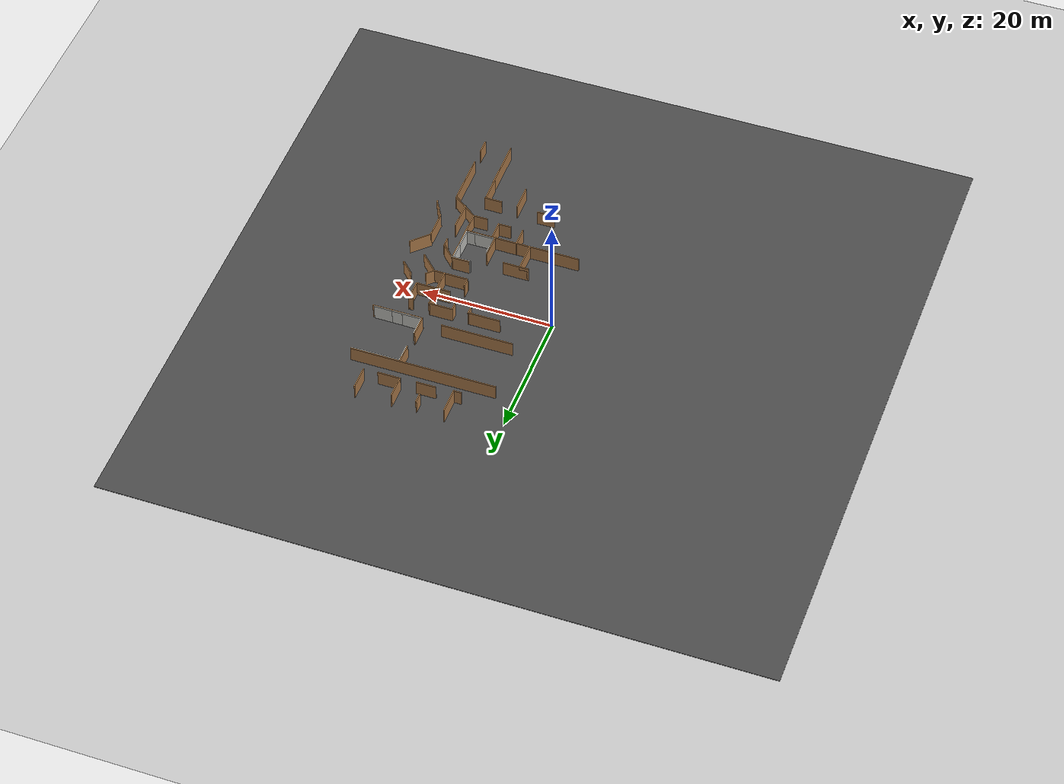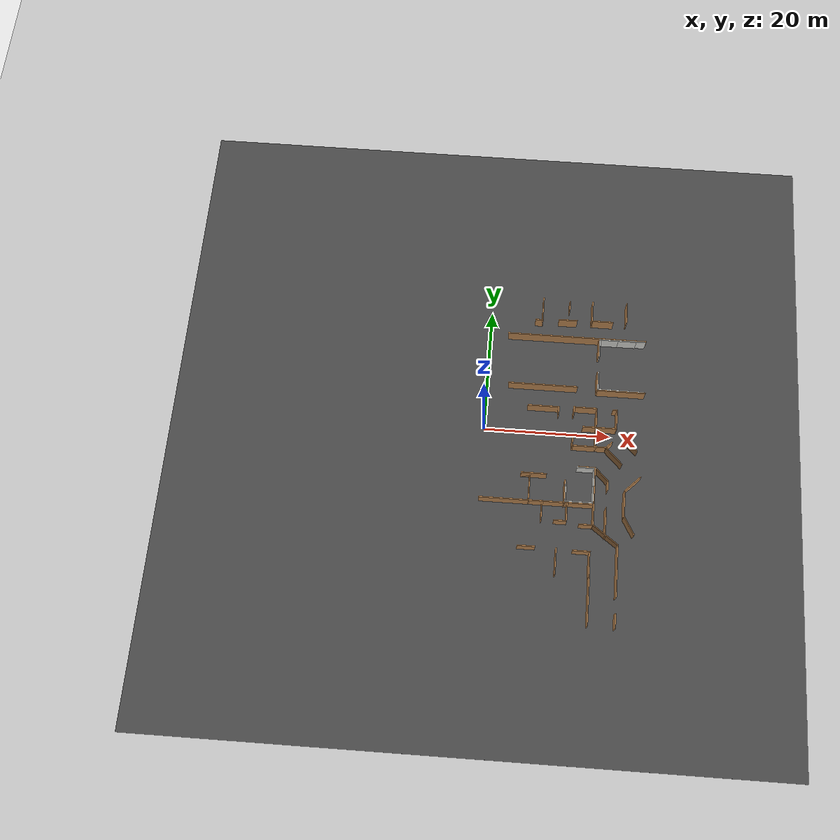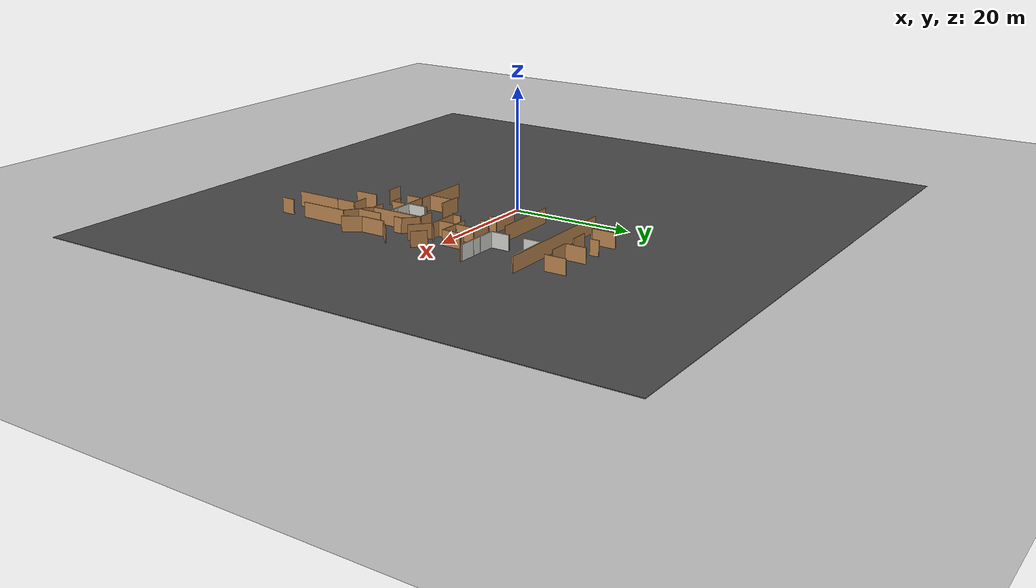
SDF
<sdf version="1.6">
 <world name="default">
  <model name="ground_plane">
   <static>1</static>
   <link name="link">
    <collision name="collision">
     <geometry><plane><normal>0 0 1</normal><size>100 100</size></plane></geometry>
     <surface><friction><ode><mu>100</mu><mu2>50</mu2></ode></friction></surface>
    </collision>
    <visual name="visual">
     <cast_shadows>0</cast_shadows>
     <geometry><plane><normal>0 0 1</normal><size>100 100</size></plane></geometry>
     <material>
      <script><uri>file://media/materials/scripts/gazebo.material</uri><name>Gazebo/Grey</name></script>
     </material>
    </visual>
   </link>
  </model>
  <model name="asphalt_plane">
   <static>1</static>
   <link name="link">
    <collision name="collision"><geometry><box><size>100 100 0.1</size></box></geometry></collision>
    <visual name="visual">
     <cast_shadows>0</cast_shadows>
     <geometry><box><size>100 100 0.1</size></box></geometry>
     <material>
      <script>
       <uri>model://asphalt_plane/materials/scripts</uri>
       <uri>model://asphalt_plane/materials/textures</uri>
       <name>vrc/asphalt</name>
      </script>
     </material>
    </visual>
   </link>
  </model>
  <model name="Hard_wall_wall_6_clone_1">
   <pose>16.3445 -5.99981 0 0 -0 1.57079</pose>
   <link name="Wall_0">
    <collision name="Wall_0_Collision">
     <geometry><box><size>3 0.15 2.5</size></box></geometry>
     <pose>0 0 1.25 0 -0 0</pose>
    </collision>
    <visual name="Wall_0_Visual">
     <pose>0 0 1.25 0 -0 0</pose>
     <geometry><box><size>3 0.15 2.5</size></box></geometry>
     <material>
      <script><uri>file://media/materials/scripts/gazebo.material</uri><name>Gazebo/CeilingTiled</name></script>
      <ambient>1 1 1 1</ambient>
     </material>
     <meta><layer>0</layer></meta>
    </visual>
    <pose>0 0 0 0 -0 1.5708</pose>
   </link>
   <static>1</static>
  </model>
  <model name="Hard_wall_wall_6_clone_2">
   <pose>15.9495 -11.5377 0 0 -0 1.57079</pose>
   <link name="Wall_0">
    <collision name="Wall_0_Collision">
     <geometry><box><size>3 0.15 2.5</size></box></geometry>
     <pose>0 0 1.25 0 -0 0</pose>
    </collision>
    <visual name="Wall_0_Visual">
     <pose>0 0 1.25 0 -0 0</pose>
     <geometry><box><size>3 0.15 2.5</size></box></geometry>
     <material>
      <script><uri>file://media/materials/scripts/gazebo.material</uri><name>Gazebo/CeilingTiled</name></script>
      <ambient>1 1 1 1</ambient>
     </material>
     <meta><layer>0</layer></meta>
    </visual>
    <pose>0 0 0 0 -0 1.5708</pose>
   </link>
   <static>1</static>
  </model>
  <model name="Hard_wall_wall_6_clone_3">
   <pose>14.6748 -11.5357 0 0 -0 1.57079</pose>
   <link name="Wall_0">
    <collision name="Wall_0_Collision">
     <geometry><box><size>3 0.15 2.5</size></box></geometry>
     <pose>0 0 1.25 0 -0 0</pose>
    </collision>
    <visual name="Wall_0_Visual">
     <pose>0 0 1.25 0 -0 0</pose>
     <geometry><box><size>3 0.15 2.5</size></box></geometry>
     <material>
      <script><uri>file://media/materials/scripts/gazebo.material</uri><name>Gazebo/CeilingTiled</name></script>
      <ambient>1 1 1 1</ambient>
     </material>
     <meta><layer>0</layer></meta>
    </visual>
    <pose>0 0 0 0 -0 1.5708</pose>
   </link>
   <static>1</static>
  </model>
  <model name="Hard_wall_wall_7">
   <pose>13.2693 -9.97942 0 0 -0 0</pose>
   <link name="Wall_0">
    <collision name="Wall_0_Collision">
     <geometry><box><size>3 0.15 2.5</size></box></geometry>
     <pose>0 0 1.25 0 -0 0</pose>
    </collision>
    <visual name="Wall_0_Visual">
     <pose>0 0 1.25 0 -0 0</pose>
     <geometry><box><size>3 0.15 2.5</size></box></geometry>
     <material>
      <script><uri>file://media/materials/scripts/gazebo.material</uri><name>Gazebo/CeilingTiled</name></script>
      <ambient>1 1 1 1</ambient>
     </material>
     <meta><layer>0</layer></meta>
    </visual>
    <pose>0 0 0 0 -0 1.5708</pose>
   </link>
   <static>1</static>
  </model>
  <model name="Hard_wall_wall_8">
   <pose>17.5032 -10.1408 0 0 -0 0</pose>
   <link name="Wall_0">
    <collision name="Wall_0_Collision">
     <geometry><box><size>3 0.15 2.5</size></box></geometry>
     <pose>0 0 1.25 0 -0 0</pose>
    </collision>
    <visual name="Wall_0_Visual">
     <pose>0 0 1.25 0 -0 0</pose>
     <geometry><box><size>3 0.15 2.5</size></box></geometry>
     <material>
      <script><uri>file://media/materials/scripts/gazebo.material</uri><name>Gazebo/CeilingTiled</name></script>
      <ambient>1 1 1 1</ambient>
     </material>
     <meta><layer>0</layer></meta>
    </visual>
    <pose>0 0 0 0 -0 1.5708</pose>
   </link>
   <static>1</static>
  </model>
  <model name="Hard_wall_wall_9">
   <pose>17.5144 -7.46989 0 0 -0 0</pose>
   <link name="Wall_0">
    <collision name="Wall_0_Collision">
     <geometry><box><size>3 0.15 2.5</size></box></geometry>
     <pose>0 0 1.25 0 -0 0</pose>
    </collision>
    <visual name="Wall_0_Visual">
     <pose>0 0 1.25 0 -0 0</pose>
     <geometry><box><size>3 0.15 2.5</size></box></geometry>
     <material>
      <script><uri>file://media/materials/scripts/gazebo.material</uri><name>Gazebo/CeilingTiled</name></script>
      <ambient>1 1 1 1</ambient>
     </material>
     <meta><layer>0</layer></meta>
    </visual>
    <pose>0 0 0 0 -0 1.5708</pose>
   </link>
   <static>1</static>
  </model>
  <model name="Hard_wall_wall_6_clone_15">
   <pose>19.0082 7.09385 0 0 -0 1.57079</pose>
   <link name="Wall_0">
    <collision name="Wall_0_Collision">
     <geometry><box><size>3 0.15 2.5</size></box></geometry>
     <pose>0 0 1.25 0 -0 0</pose>
    </collision>
    <visual name="Wall_0_Visual">
     <pose>0 0 1.25 0 -0 0</pose>
     <geometry><box><size>3 0.15 2.5</size></box></geometry>
     <material>
      <script><uri>file://media/materials/scripts/gazebo.material</uri><name>Gazebo/CeilingTiled</name></script>
      <ambient>1 1 1 1</ambient>
     </material>
     <meta><layer>0</layer></meta>
    </visual>
    <pose>0 0 0 0 -0 1.5708</pose>
   </link>
   <static>1</static>
  </model>
  <model name="Hard_wall_wall_6_clone_16">
   <pose>20.5949 7.06095 0 0 -0 1.57079</pose>
   <link name="Wall_0">
    <collision name="Wall_0_Collision">
     <geometry><box><size>3 0.15 2.5</size></box></geometry>
     <pose>0 0 1.25 0 -0 0</pose>
    </collision>
    <visual name="Wall_0_Visual">
     <pose>0 0 1.25 0 -0 0</pose>
     <geometry><box><size>3 0.15 2.5</size></box></geometry>
     <material>
      <script><uri>file://media/materials/scripts/gazebo.material</uri><name>Gazebo/CeilingTiled</name></script>
      <ambient>1 1 1 1</ambient>
     </material>
     <meta><layer>0</layer></meta>
    </visual>
    <pose>0 0 0 0 -0 1.5708</pose>
   </link>
   <static>1</static>
  </model>
  <model name="Hard_wall_wall_6_clone_17">
   <pose>23.3706 7.05229 0 0 -0 1.57079</pose>
   <link name="Wall_0">
    <collision name="Wall_0_Collision">
     <geometry><box><size>3 0.15 2.5</size></box></geometry>
     <pose>0 0 1.25 0 -0 0</pose>
    </collision>
    <visual name="Wall_0_Visual">
     <pose>0 0 1.25 0 -0 0</pose>
     <geometry><box><size>3 0.15 2.5</size></box></geometry>
     <material>
      <script><uri>file://media/materials/scripts/gazebo.material</uri><name>Gazebo/CeilingTiled</name></script>
      <ambient>1 1 1 1</ambient>
     </material>
     <meta><layer>0</layer></meta>
    </visual>
    <pose>0 0 0 0 -0 1.5708</pose>
   </link>
   <static>1</static>
  </model>
  <model name="Hard_wall_wall_6_clone_18">
   <pose>23.5039 15.7147 0 0 -0 1.57079</pose>
   <link name="Wall_0">
    <collision name="Wall_0_Collision">
     <geometry><box><size>3 0.15 2.5</size></box></geometry>
     <pose>0 0 1.25 0 -0 0</pose>
    </collision>
    <visual name="Wall_0_Visual">
     <pose>0 0 1.25 0 -0 0</pose>
     <geometry><box><size>3 0.15 2.5</size></box></geometry>
     <material>
      <script><uri>file://media/materials/scripts/gazebo.material</uri><name>Gazebo/CeilingTiled</name></script>
      <ambient>1 1 1 1</ambient>
     </material>
     <meta><layer>0</layer></meta>
    </visual>
    <pose>0 0 0 0 -0 1.5708</pose>
   </link>
   <static>1</static>
  </model>
  <model name="Hard_wall_wall_6_clone_19">
   <pose>21.9639 15.6573 0 0 -0 1.57079</pose>
   <link name="Wall_0">
    <collision name="Wall_0_Collision">
     <geometry><box><size>3 0.15 2.5</size></box></geometry>
     <pose>0 0 1.25 0 -0 0</pose>
    </collision>
    <visual name="Wall_0_Visual">
     <pose>0 0 1.25 0 -0 0</pose>
     <geometry><box><size>3 0.15 2.5</size></box></geometry>
     <material>
      <script><uri>file://media/materials/scripts/gazebo.material</uri><name>Gazebo/CeilingTiled</name></script>
      <ambient>1 1 1 1</ambient>
     </material>
     <meta><layer>0</layer></meta>
    </visual>
    <pose>0 0 0 0 -0 1.5708</pose>
   </link>
   <static>1</static>
  </model>
  <model name="Hard_wall_wall_6_clone_20">
   <pose>19.0587 15.6479 0 0 -0 1.57079</pose>
   <link name="Wall_0">
    <collision name="Wall_0_Collision">
     <geometry><box><size>3 0.15 2.5</size></box></geometry>
     <pose>0 0 1.25 0 -0 0</pose>
    </collision>
    <visual name="Wall_0_Visual">
     <pose>0 0 1.25 0 -0 0</pose>
     <geometry><box><size>3 0.15 2.5</size></box></geometry>
     <material>
      <script><uri>file://media/materials/scripts/gazebo.material</uri><name>Gazebo/CeilingTiled</name></script>
      <ambient>1 1 1 1</ambient>
     </material>
     <meta><layer>0</layer></meta>
    </visual>
    <pose>0 0 0 0 -0 1.5708</pose>
   </link>
   <static>1</static>
  </model>
  <model name="Hard_wall_wall_16">
   <pose>17.5839 8.5954 0 0 -0 0</pose>
   <link name="Wall_0">
    <collision name="Wall_0_Collision">
     <geometry><box><size>3 0.15 2.5</size></box></geometry>
     <pose>0 0 1.25 0 -0 0</pose>
    </collision>
    <visual name="Wall_0_Visual">
     <pose>0 0 1.25 0 -0 0</pose>
     <geometry><box><size>3 0.15 2.5</size></box></geometry>
     <material>
      <script><uri>file://media/materials/scripts/gazebo.material</uri><name>Gazebo/CeilingTiled</name></script>
      <ambient>1 1 1 1</ambient>
     </material>
     <meta><layer>0</layer></meta>
    </visual>
    <pose>0 0 0 0 -0 1.5708</pose>
   </link>
   <static>1</static>
  </model>
  <model name="Hard_wall_wall_18">
   <pose>17.6374 14.261 0 0 -0 0</pose>
   <link name="Wall_0">
    <collision name="Wall_0_Collision">
     <geometry><box><size>3 0.15 2.5</size></box></geometry>
     <pose>0 0 1.25 0 -0 0</pose>
    </collision>
    <visual name="Wall_0_Visual">
     <pose>0 0 1.25 0 -0 0</pose>
     <geometry><box><size>3 0.15 2.5</size></box></geometry>
     <material>
      <script><uri>file://media/materials/scripts/gazebo.material</uri><name>Gazebo/CeilingTiled</name></script>
      <ambient>1 1 1 1</ambient>
     </material>
     <meta><layer>0</layer></meta>
    </visual>
    <pose>0 0 0 0 -0 1.5708</pose>
   </link>
   <static>1</static>
  </model>
  <model name="Soft_wall_v1_1">
   <pose>-14.3408 -3.86286 0 0 -0 0</pose>
   <link name="Wall_100">
    <collision name="Wall_100_Collision">
     <geometry><box><size>3.5 0.15 2.5</size></box></geometry>
     <pose>0 0 1.25 0 -0 0</pose>
    </collision>
    <visual name="Wall_100_Visual">
     <pose>0 0 1.25 0 -0 0</pose>
     <geometry><box><size>3.5 0.15 2.5</size></box></geometry>
     <material>
      <script><uri>file://media/materials/scripts/gazebo.material</uri><name>Gazebo/Wood</name></script>
      <ambient>1 1 1 1</ambient>
     </material>
     <meta><layer>0</layer></meta>
    </visual>
    <pose>32.2598 22.7229 0 0 -0 3.14159</pose>
   </link>
   <link name="Wall_101">
    <collision name="Wall_101_Collision">
     <geometry><box><size>3.5 0.15 2.5</size></box></geometry>
     <pose>0 0 1.25 0 -0 0</pose>
    </collision>
    <visual name="Wall_101_Visual">
     <pose>0 0 1.25 0 -0 0</pose>
     <geometry><box><size>3.5 0.15 2.5</size></box></geometry>
     <material>
      <script><uri>file://media/materials/scripts/gazebo.material</uri><name>Gazebo/Wood</name></script>
      <ambient>1 1 1 1</ambient>
     </material>
     <meta><layer>0</layer></meta>
    </visual>
    <pose>30.5848 24.3979 0 0 -0 1.5708</pose>
   </link>
   <link name="Wall_105">
    <collision name="Wall_105_Collision">
     <geometry><box><size>3 0.15 2.5</size></box></geometry>
     <pose>0 0 1.25 0 -0 0</pose>
    </collision>
    <visual name="Wall_105_Visual">
     <pose>0 0 1.25 0 -0 0</pose>
     <geometry><box><size>3 0.15 2.5</size></box></geometry>
     <material>
      <script><uri>file://media/materials/scripts/gazebo.material</uri><name>Gazebo/Wood</name></script>
      <ambient>1 1 1 1</ambient>
     </material>
     <meta><layer>0</layer></meta>
    </visual>
    <pose>26.6647 22.5998 0 0 -0 3.14159</pose>
   </link>
   <link name="Wall_107">
    <collision name="Wall_107_Collision">
     <geometry><box><size>1.5 0.15 2.5</size></box></geometry>
     <pose>0 0 1.25 0 -0 0</pose>
    </collision>
    <visual name="Wall_107_Visual">
     <pose>0 0 1.25 0 -0 0</pose>
     <geometry><box><size>1.5 0.15 2.5</size></box></geometry>
     <material>
      <script><uri>file://media/materials/scripts/gazebo.material</uri><name>Gazebo/Wood</name></script>
      <ambient>1 1 1 1</ambient>
     </material>
     <meta><layer>0</layer></meta>
    </visual>
    <pose>26.8591 25.3088 0 0 0 -1.5708</pose>
   </link>
   <link name="Wall_109">
    <collision name="Wall_109_Collision">
     <geometry><box><size>4 0.15 2.5</size></box></geometry>
     <pose>0 0 1.25 0 -0 0</pose>
    </collision>
    <visual name="Wall_109_Visual">
     <pose>0 0 1.25 0 -0 0</pose>
     <geometry><box><size>4 0.15 2.5</size></box></geometry>
     <material>
      <script><uri>file://media/materials/scripts/gazebo.material</uri><name>Gazebo/Wood</name></script>
      <ambient>1 1 1 1</ambient>
     </material>
     <meta><layer>0</layer></meta>
    </visual>
    <pose>22.5522 24.305 0 0 0 -1.5708</pose>
   </link>
   <link name="Wall_110">
    <collision name="Wall_110_Collision">
     <geometry><box><size>1.25 0.15 2.5</size></box></geometry>
     <pose>0 0 1.25 0 -0 0</pose>
    </collision>
    <visual name="Wall_110_Visual">
     <pose>0 0 1.25 0 -0 0</pose>
     <geometry><box><size>1.25 0.15 2.5</size></box></geometry>
     <material>
      <script><uri>file://media/materials/scripts/gazebo.material</uri><name>Gazebo/Wood</name></script>
      <ambient>1 1 1 1</ambient>
     </material>
     <meta><layer>0</layer></meta>
    </visual>
    <pose>22.0022 22.38 0 0 -0 3.14159</pose>
   </link>
   <link name="Wall_174">
    <collision name="Wall_174_Collision">
     <geometry><box><size>22.25 0.15 2.5</size></box></geometry>
     <pose>0 0 1.25 0 -0 0</pose>
    </collision>
    <visual name="Wall_174_Visual">
     <pose>0 0 1.25 0 -0 0</pose>
     <geometry><box><size>22.25 0.15 2.5</size></box></geometry>
     <material>
      <script><uri>file://media/materials/scripts/gazebo.material</uri><name>Gazebo/Wood</name></script>
      <ambient>1 1 1 1</ambient>
     </material>
     <meta><layer>0</layer></meta>
    </visual>
    <pose>28.2902 19.6947 0 0 -0 3.14159</pose>
   </link>
   <link name="Wall_178">
    <collision name="Wall_178_Collision">
     <geometry><box><size>3.25 0.15 2.5</size></box></geometry>
     <pose>0 0 1.25 0 -0 0</pose>
    </collision>
    <visual name="Wall_178_Visual">
     <pose>0 0 1.25 0 -0 0</pose>
     <geometry><box><size>3.25 0.15 2.5</size></box></geometry>
     <material>
      <script><uri>file://media/materials/scripts/gazebo.material</uri><name>Gazebo/Wood</name></script>
      <ambient>1 1 1 1</ambient>
     </material>
     <meta><layer>0</layer></meta>
    </visual>
    <pose>31.7855 12.3459 0 0 -0 1.5708</pose>
   </link>
   <link name="Wall_180">
    <collision name="Wall_180_Collision">
     <geometry><box><size>3 0.15 2.5</size></box></geometry>
     <pose>0 0 1.25 0 -0 0</pose>
    </collision>
    <visual name="Wall_180_Visual">
     <pose>0 0 1.25 0 -0 0</pose>
     <geometry><box><size>3 0.15 2.5</size></box></geometry>
     <material>
      <script><uri>file://media/materials/scripts/gazebo.material</uri><name>Gazebo/Wood</name></script>
      <ambient>1 1 1 1</ambient>
     </material>
     <meta><layer>0</layer></meta>
    </visual>
    <pose>31.8338 18.0851 0 0 0 -1.5708</pose>
   </link>
   <link name="Wall_188">
    <collision name="Wall_188_Collision">
     <geometry><box><size>11 0.15 2.5</size></box></geometry>
     <pose>0 0 1.25 0 -0 0</pose>
    </collision>
    <visual name="Wall_188_Visual">
     <pose>0 0 1.25 0 -0 0</pose>
     <geometry><box><size>11 0.15 2.5</size></box></geometry>
     <material>
      <script><uri>file://media/materials/scripts/gazebo.material</uri><name>Gazebo/Wood</name></script>
      <ambient>1 1 1 1</ambient>
     </material>
     <meta><layer>0</layer></meta>
    </visual>
    <pose>23.2094 11.1423 0 0 -0 3.14159</pose>
   </link>
   <link name="Wall_19">
    <collision name="Wall_19_Collision">
     <geometry><box><size>7.75 0.15 2.5</size></box></geometry>
     <pose>0 0 1.25 0 -0 0</pose>
    </collision>
    <visual name="Wall_19_Visual">
     <pose>0 0 1.25 0 -0 0</pose>
     <geometry><box><size>7.75 0.15 2.5</size></box></geometry>
     <material>
      <script><uri>file://media/materials/scripts/gazebo.material</uri><name>Gazebo/Wood</name></script>
      <ambient>1 1 1 1</ambient>
     </material>
     <meta><layer>0</layer></meta>
    </visual>
    <pose>35.5855 10.7959 0 0 -0 3.14159</pose>
   </link>
   <link name="Wall_202">
    <collision name="Wall_202_Collision">
     <geometry><box><size>3.75 0.15 2.5</size></box></geometry>
     <pose>0 0 1.25 0 -0 0</pose>
    </collision>
    <visual name="Wall_202_Visual">
     <pose>0 0 1.25 0 -0 0</pose>
     <geometry><box><size>3.75 0.15 2.5</size></box></geometry>
     <material>
      <script><uri>file://media/materials/scripts/gazebo.material</uri><name>Gazebo/Wood</name></script>
      <ambient>1 1 1 1</ambient>
     </material>
     <meta><layer>0</layer></meta>
    </visual>
    <pose>30.1156 7.71139 0 0 -0 3.14159</pose>
   </link>
   <link name="Wall_203">
    <collision name="Wall_203_Collision">
     <geometry><box><size>1.25 0.15 2.5</size></box></geometry>
     <pose>0 0 1.25 0 -0 0</pose>
    </collision>
    <visual name="Wall_203_Visual">
     <pose>0 0 1.25 0 -0 0</pose>
     <geometry><box><size>1.25 0.15 2.5</size></box></geometry>
     <material>
      <script><uri>file://media/materials/scripts/gazebo.material</uri><name>Gazebo/Wood</name></script>
      <ambient>1 1 1 1</ambient>
     </material>
     <meta><layer>0</layer></meta>
    </visual>
    <pose>28.3156 7.16139 0 0 0 -1.5708</pose>
   </link>
   <link name="Wall_205">
    <collision name="Wall_205_Collision">
     <geometry><box><size>3.75 0.15 2.5</size></box></geometry>
     <pose>0 0 1.25 0 -0 0</pose>
    </collision>
    <visual name="Wall_205_Visual">
     <pose>0 0 1.25 0 -0 0</pose>
     <geometry><box><size>3.75 0.15 2.5</size></box></geometry>
     <material>
      <script><uri>file://media/materials/scripts/gazebo.material</uri><name>Gazebo/Wood</name></script>
      <ambient>1 1 1 1</ambient>
     </material>
     <meta><layer>0</layer></meta>
    </visual>
    <pose>30.1156 1.36139 0 0 -0 3.14159</pose>
   </link>
   <link name="Wall_206">
    <collision name="Wall_206_Collision">
     <geometry><box><size>1.5 0.15 2.5</size></box></geometry>
     <pose>0 0 1.25 0 -0 0</pose>
    </collision>
    <visual name="Wall_206_Visual">
     <pose>0 0 1.25 0 -0 0</pose>
     <geometry><box><size>1.5 0.15 2.5</size></box></geometry>
     <material>
      <script><uri>file://media/materials/scripts/gazebo.material</uri><name>Gazebo/Wood</name></script>
      <ambient>1 1 1 1</ambient>
     </material>
     <meta><layer>0</layer></meta>
    </visual>
    <pose>28.3156 2.03639 0 0 -0 1.5708</pose>
   </link>
   <link name="Wall_208">
    <collision name="Wall_208_Collision">
     <geometry><box><size>2.25 0.15 2.5</size></box></geometry>
     <pose>0 0 1.25 0 -0 0</pose>
    </collision>
    <visual name="Wall_208_Visual">
     <pose>0 0 1.25 0 -0 0</pose>
     <geometry><box><size>2.25 0.15 2.5</size></box></geometry>
     <material>
      <script><uri>file://media/materials/scripts/gazebo.material</uri><name>Gazebo/Wood</name></script>
      <ambient>1 1 1 1</ambient>
     </material>
     <meta><layer>0</layer></meta>
    </visual>
    <pose>30.9367 4.55145 0 0 -0 3.14159</pose>
   </link>
   <link name="Wall_210">
    <collision name="Wall_210_Collision">
     <geometry><box><size>1.25 0.15 2.5</size></box></geometry>
     <pose>0 0 1.25 0 -0 0</pose>
    </collision>
    <visual name="Wall_210_Visual">
     <pose>0 0 1.25 0 -0 0</pose>
     <geometry><box><size>1.25 0.15 2.5</size></box></geometry>
     <material>
      <script><uri>file://media/materials/scripts/gazebo.material</uri><name>Gazebo/Wood</name></script>
      <ambient>1 1 1 1</ambient>
     </material>
     <meta><layer>0</layer></meta>
    </visual>
    <pose>25.8955 7.01631 0 0 0 -1.5708</pose>
   </link>
   <link name="Wall_212">
    <collision name="Wall_212_Collision">
     <geometry><box><size>5 0.15 2.5</size></box></geometry>
     <pose>0 0 1.25 0 -0 0</pose>
    </collision>
    <visual name="Wall_212_Visual">
     <pose>0 0 1.25 0 -0 0</pose>
     <geometry><box><size>5 0.15 2.5</size></box></geometry>
     <material>
      <script><uri>file://media/materials/scripts/gazebo.material</uri><name>Gazebo/Wood</name></script>
      <ambient>1 1 1 1</ambient>
     </material>
     <meta><layer>0</layer></meta>
    </visual>
    <pose>23.4705 7.56631 0 0 -0 3.14159</pose>
   </link>
   <link name="Wall_22">
    <collision name="Wall_22_Collision">
     <geometry><box><size>6.5 0.15 2.5</size></box></geometry>
     <pose>0 0 1.25 0 -0 0</pose>
    </collision>
    <visual name="Wall_22_Visual">
     <pose>0 0 1.25 0 -0 0</pose>
     <geometry><box><size>6.5 0.15 2.5</size></box></geometry>
     <material>
      <script><uri>file://media/materials/scripts/gazebo.material</uri><name>Gazebo/Wood</name></script>
      <ambient>1 1 1 1</ambient>
     </material>
     <meta><layer>0</layer></meta>
    </visual>
    <pose>31.9156 4.53639 0 0 0 -1.5708</pose>
   </link>
   <link name="Wall_24">
    <collision name="Wall_24_Collision">
     <geometry><box><size>9.25 0.15 2.5</size></box></geometry>
     <pose>0 0 1.25 0 -0 0</pose>
    </collision>
    <visual name="Wall_24_Visual">
     <pose>0 0 1.25 0 -0 0</pose>
     <geometry><box><size>9.25 0.15 2.5</size></box></geometry>
     <material>
      <script><uri>file://media/materials/scripts/gazebo.material</uri><name>Gazebo/Wood</name></script>
      <ambient>1 1 1 1</ambient>
     </material>
     <meta><layer>0</layer></meta>
    </visual>
    <pose>32.0092 -6.57054 0 0 0 -1.5708</pose>
   </link>
   <link name="Wall_27">
    <collision name="Wall_27_Collision">
     <geometry><box><size>3.75 0.15 2.5</size></box></geometry>
     <pose>0 0 1.25 0 -0 0</pose>
    </collision>
    <visual name="Wall_27_Visual">
     <pose>0 0 1.25 0 -0 0</pose>
     <geometry><box><size>3.75 0.15 2.5</size></box></geometry>
     <material>
      <script><uri>file://media/materials/scripts/gazebo.material</uri><name>Gazebo/Wood</name></script>
      <ambient>1 1 1 1</ambient>
     </material>
     <meta><layer>0</layer></meta>
    </visual>
    <pose>31.6466 -17.2514 0 0 -0 1.5708</pose>
   </link>
   <link name="Wall_29">
    <collision name="Wall_29_Collision">
     <geometry><box><size>2.75 0.15 2.5</size></box></geometry>
     <pose>0 0 1.25 0 -0 0</pose>
    </collision>
    <visual name="Wall_29_Visual">
     <pose>0 0 1.25 0 -0 0</pose>
     <geometry><box><size>2.75 0.15 2.5</size></box></geometry>
     <material>
      <script><uri>file://media/materials/scripts/gazebo.material</uri><name>Gazebo/Wood</name></script>
      <ambient>1 1 1 1</ambient>
     </material>
     <meta><layer>0</layer></meta>
    </visual>
    <pose>30.4285 -15.2148 0 0 -0 3.14159</pose>
   </link>
   <link name="Wall_31">
    <collision name="Wall_31_Collision">
     <geometry><box><size>4 0.15 2.5</size></box></geometry>
     <pose>0 0 1.25 0 -0 0</pose>
    </collision>
    <visual name="Wall_31_Visual">
     <pose>0 0 1.25 0 -0 0</pose>
     <geometry><box><size>4 0.15 2.5</size></box></geometry>
     <material>
      <script><uri>file://media/materials/scripts/gazebo.material</uri><name>Gazebo/Wood</name></script>
      <ambient>1 1 1 1</ambient>
     </material>
     <meta><layer>0</layer></meta>
    </visual>
    <pose>26.5818 -17.0462 0 0 0 -1.5708</pose>
   </link>
   <link name="Wall_33">
    <collision name="Wall_33_Collision">
     <geometry><box><size>2.75 0.15 2.5</size></box></geometry>
     <pose>0 0 1.25 0 -0 0</pose>
    </collision>
    <visual name="Wall_33_Visual">
     <pose>0 0 1.25 0 -0 0</pose>
     <geometry><box><size>2.75 0.15 2.5</size></box></geometry>
     <material>
      <script><uri>file://media/materials/scripts/gazebo.material</uri><name>Gazebo/Wood</name></script>
      <ambient>1 1 1 1</ambient>
     </material>
     <meta><layer>0</layer></meta>
    </visual>
    <pose>22.0066 -15.0276 0 0 -0 3.14159</pose>
   </link>
   <link name="Wall_345">
    <collision name="Wall_345_Collision">
     <geometry><box><size>7.75 0.15 2.5</size></box></geometry>
     <pose>0 0 1.25 0 -0 0</pose>
    </collision>
    <visual name="Wall_345_Visual">
     <pose>0 0 1.25 0 -0 0</pose>
     <geometry><box><size>7.75 0.15 2.5</size></box></geometry>
     <material>
      <script><uri>file://media/materials/scripts/gazebo.material</uri><name>Gazebo/Wood</name></script>
      <ambient>1 1 1 1</ambient>
     </material>
     <meta><layer>0</layer></meta>
    </visual>
    <pose>31.7218 -22.5131 0 0 0 -1.5708</pose>
   </link>
   <link name="Wall_354">
    <collision name="Wall_354_Collision">
     <geometry><box><size>3.5 0.15 2.5</size></box></geometry>
     <pose>0 0 1.25 0 -0 0</pose>
    </collision>
    <visual name="Wall_354_Visual">
     <pose>0 0 1.25 0 -0 0</pose>
     <geometry><box><size>3.5 0.15 2.5</size></box></geometry>
     <material>
      <script><uri>file://media/materials/scripts/gazebo.material</uri><name>Gazebo/Wood</name></script>
      <ambient>1 1 1 1</ambient>
     </material>
     <meta><layer>0</layer></meta>
    </visual>
    <pose>37.8607 -4.19295 0 0 0 -2.35619</pose>
   </link>
   <link name="Wall_355">
    <collision name="Wall_355_Collision">
     <geometry><box><size>4.25 0.15 2.5</size></box></geometry>
     <pose>0 0 1.25 0 -0 0</pose>
    </collision>
    <visual name="Wall_355_Visual">
     <pose>0 0 1.25 0 -0 0</pose>
     <geometry><box><size>4.25 0.15 2.5</size></box></geometry>
     <material>
      <script><uri>file://media/materials/scripts/gazebo.material</uri><name>Gazebo/Wood</name></script>
      <ambient>1 1 1 1</ambient>
     </material>
     <meta><layer>0</layer></meta>
    </visual>
    <pose>36.6763 -7.42735 0 0 0 -1.5708</pose>
   </link>
   <link name="Wall_356">
    <collision name="Wall_356_Collision">
     <geometry><box><size>3.25 0.15 2.5</size></box></geometry>
     <pose>0 0 1.25 0 -0 0</pose>
    </collision>
    <visual name="Wall_356_Visual">
     <pose>0 0 1.25 0 -0 0</pose>
     <geometry><box><size>3.25 0.15 2.5</size></box></geometry>
     <material>
      <script><uri>file://media/materials/scripts/gazebo.material</uri><name>Gazebo/Wood</name></script>
      <ambient>1 1 1 1</ambient>
     </material>
     <meta><layer>0</layer></meta>
    </visual>
    <pose>37.4513 -10.8197 0 0 0 -1.0472</pose>
   </link>
   <link name="Wall_380">
    <collision name="Wall_380_Collision">
     <geometry><box><size>1.75 0.15 2.5</size></box></geometry>
     <pose>0 0 1.25 0 -0 0</pose>
    </collision>
    <visual name="Wall_380_Visual">
     <pose>0 0 1.25 0 -0 0</pose>
     <geometry><box><size>1.75 0.15 2.5</size></box></geometry>
     <material>
      <script><uri>file://media/materials/scripts/gazebo.material</uri><name>Gazebo/Wood</name></script>
      <ambient>1 1 1 1</ambient>
     </material>
     <meta><layer>0</layer></meta>
    </visual>
    <pose>32.7157 1.36139 0 0 -0 0</pose>
   </link>
   <link name="Wall_381">
    <collision name="Wall_381_Collision">
     <geometry><box><size>3.75 0.15 2.5</size></box></geometry>
     <pose>0 0 1.25 0 -0 0</pose>
    </collision>
    <visual name="Wall_381_Visual">
     <pose>0 0 1.25 0 -0 0</pose>
     <geometry><box><size>3.75 0.15 2.5</size></box></geometry>
     <material>
      <script><uri>file://media/materials/scripts/gazebo.material</uri><name>Gazebo/Wood</name></script>
      <ambient>1 1 1 1</ambient>
     </material>
     <meta><layer>0</layer></meta>
    </visual>
    <pose>34.7884 0.088597 0 0 0 -0.785398</pose>
   </link>
   <link name="Wall_388">
    <collision name="Wall_388_Collision">
     <geometry><box><size>3 0.15 2.5</size></box></geometry>
     <pose>0 0 1.25 0 -0 0</pose>
    </collision>
    <visual name="Wall_388_Visual">
     <pose>0 0 1.25 0 -0 0</pose>
     <geometry><box><size>3 0.15 2.5</size></box></geometry>
     <material>
      <script><uri>file://media/materials/scripts/gazebo.material</uri><name>Gazebo/Wood</name></script>
      <ambient>1 1 1 1</ambient>
     </material>
     <meta><layer>0</layer></meta>
    </visual>
    <pose>33.0169 -3.02816 0 0 0 -0.785398</pose>
   </link>
   <link name="Wall_390">
    <collision name="Wall_390_Collision">
     <geometry><box><size>1.5 0.15 2.5</size></box></geometry>
     <pose>0 0 1.25 0 -0 0</pose>
    </collision>
    <visual name="Wall_390_Visual">
     <pose>0 0 1.25 0 -0 0</pose>
     <geometry><box><size>1.5 0.15 2.5</size></box></geometry>
     <material>
      <script><uri>file://media/materials/scripts/gazebo.material</uri><name>Gazebo/Wood</name></script>
      <ambient>1 1 1 1</ambient>
     </material>
     <meta><layer>0</layer></meta>
    </visual>
    <pose>34.0245 -4.71079 0 0 0 -1.5708</pose>
   </link>
   <link name="Wall_401">
    <collision name="Wall_401_Collision">
     <geometry><box><size>4.89931 0.15 2.5</size></box></geometry>
     <pose>0 0 1.25 0 -0 0</pose>
    </collision>
    <visual name="Wall_401_Visual">
     <pose>0 0 1.25 0 -0 0</pose>
     <geometry><box><size>4.89931 0.15 2.5</size></box></geometry>
     <material>
      <script><uri>file://media/materials/scripts/gazebo.material</uri><name>Gazebo/Wood</name></script>
      <ambient>1 1 1 1</ambient>
     </material>
     <meta><layer>0</layer></meta>
    </visual>
    <pose>33.9285 -12.5188 0 0 -0 2.51197</pose>
   </link>
   <link name="Wall_403">
    <collision name="Wall_403_Collision">
     <geometry><box><size>4.5 0.15 2.5</size></box></geometry>
     <pose>0 0 1.25 0 -0 0</pose>
    </collision>
    <visual name="Wall_403_Visual">
     <pose>0 0 1.25 0 -0 0</pose>
     <geometry><box><size>4.5 0.15 2.5</size></box></geometry>
     <material>
      <script><uri>file://media/materials/scripts/gazebo.material</uri><name>Gazebo/Wood</name></script>
      <ambient>1 1 1 1</ambient>
     </material>
     <meta><layer>0</layer></meta>
    </visual>
    <pose>33.8949 -10.4592 0 0 0 -1.5708</pose>
   </link>
   <link name="Wall_406">
    <collision name="Wall_406_Collision">
     <geometry><box><size>8 0.15 2.5</size></box></geometry>
     <pose>0 0 1.25 0 -0 0</pose>
    </collision>
    <visual name="Wall_406_Visual">
     <pose>0 0 1.25 0 -0 0</pose>
     <geometry><box><size>8 0.15 2.5</size></box></geometry>
     <material>
      <script><uri>file://media/materials/scripts/gazebo.material</uri><name>Gazebo/Wood</name></script>
      <ambient>1 1 1 1</ambient>
     </material>
     <meta><layer>0</layer></meta>
    </visual>
    <pose>35.8478 -17.8421 0 0 0 -1.5708</pose>
   </link>
   <link name="Wall_410">
    <collision name="Wall_410_Collision">
     <geometry><box><size>2.25 0.15 2.5</size></box></geometry>
     <pose>0 0 1.25 0 -0 0</pose>
    </collision>
    <visual name="Wall_410_Visual">
     <pose>0 0 1.25 0 -0 0</pose>
     <geometry><box><size>2.25 0.15 2.5</size></box></geometry>
     <material>
      <script><uri>file://media/materials/scripts/gazebo.material</uri><name>Gazebo/Wood</name></script>
      <ambient>1 1 1 1</ambient>
     </material>
     <meta><layer>0</layer></meta>
    </visual>
    <pose>35.8478 -25.2985 0 0 -0 1.5708</pose>
   </link>
   <link name="Wall_421">
    <collision name="Wall_421_Collision">
     <geometry><box><size>3.25 0.15 2.5</size></box></geometry>
     <pose>0 0 1.25 0 -0 0</pose>
    </collision>
    <visual name="Wall_421_Visual">
     <pose>0 0 1.25 0 -0 0</pose>
     <geometry><box><size>3.25 0.15 2.5</size></box></geometry>
     <material>
      <script><uri>file://media/materials/scripts/gazebo.material</uri><name>Gazebo/Wood</name></script>
      <ambient>1 1 1 1</ambient>
     </material>
     <meta><layer>0</layer></meta>
    </visual>
    <pose>33.5367 4.55145 0 0 -0 0</pose>
   </link>
   <link name="Wall_422">
    <collision name="Wall_422_Collision">
     <geometry><box><size>3.25 0.15 2.5</size></box></geometry>
     <pose>0 0 1.25 0 -0 0</pose>
    </collision>
    <visual name="Wall_422_Visual">
     <pose>0 0 1.25 0 -0 0</pose>
     <geometry><box><size>3.25 0.15 2.5</size></box></geometry>
     <material>
      <script><uri>file://media/materials/scripts/gazebo.material</uri><name>Gazebo/Wood</name></script>
      <ambient>1 1 1 1</ambient>
     </material>
     <meta><layer>0</layer></meta>
    </visual>
    <pose>35.0867 6.10145 0 0 -0 1.5708</pose>
   </link>
   <link name="Wall_423">
    <collision name="Wall_423_Collision">
     <geometry><box><size>0.75 0.15 2.5</size></box></geometry>
     <pose>0 0 1.25 0 -0 0</pose>
    </collision>
    <visual name="Wall_423_Visual">
     <pose>0 0 1.25 0 -0 0</pose>
     <geometry><box><size>0.75 0.15 2.5</size></box></geometry>
     <material>
      <script><uri>file://media/materials/scripts/gazebo.material</uri><name>Gazebo/Wood</name></script>
      <ambient>1 1 1 1</ambient>
     </material>
     <meta><layer>0</layer></meta>
    </visual>
    <pose>34.7867 7.65145 0 0 -0 3.14159</pose>
   </link>
   <link name="Wall_425">
    <collision name="Wall_425_Collision">
     <geometry><box><size>2.5 0.15 2.5</size></box></geometry>
     <pose>0 0 1.25 0 -0 0</pose>
    </collision>
    <visual name="Wall_425_Visual">
     <pose>0 0 1.25 0 -0 0</pose>
     <geometry><box><size>2.5 0.15 2.5</size></box></geometry>
     <material>
      <script><uri>file://media/materials/scripts/gazebo.material</uri><name>Gazebo/Wood</name></script>
      <ambient>1 1 1 1</ambient>
     </material>
     <meta><layer>0</layer></meta>
    </visual>
    <pose>37.5395 1.98561 0 0 -0 2.35619</pose>
   </link>
   <link name="Wall_427">
    <collision name="Wall_427_Collision">
     <geometry><box><size>1.5 0.15 2.5</size></box></geometry>
     <pose>0 0 1.25 0 -0 0</pose>
    </collision>
    <visual name="Wall_427_Visual">
     <pose>0 0 1.25 0 -0 0</pose>
     <geometry><box><size>1.5 0.15 2.5</size></box></geometry>
     <material>
      <script><uri>file://media/materials/scripts/gazebo.material</uri><name>Gazebo/Wood</name></script>
      <ambient>1 1 1 1</ambient>
     </material>
     <meta><layer>0</layer></meta>
    </visual>
    <pose>33.9929 1.83869 0 0 -0 0.785398</pose>
   </link>
   <link name="Wall_69">
    <collision name="Wall_69_Collision">
     <geometry><box><size>17.75 0.15 2.5</size></box></geometry>
     <pose>0 0 1.25 0 -0 0</pose>
    </collision>
    <visual name="Wall_69_Visual">
     <pose>0 0 1.25 0 -0 0</pose>
     <geometry><box><size>17.75 0.15 2.5</size></box></geometry>
     <material>
      <script><uri>file://media/materials/scripts/gazebo.material</uri><name>Gazebo/Wood</name></script>
      <ambient>1 1 1 1</ambient>
     </material>
     <meta><layer>0</layer></meta>
    </visual>
    <pose>23.186 -7.8915 0 0 -0 3.14159</pose>
   </link>
   <link name="Wall_72">
    <collision name="Wall_72_Collision">
     <geometry><box><size>2.25 0.15 2.5</size></box></geometry>
     <pose>0 0 1.25 0 -0 0</pose>
    </collision>
    <visual name="Wall_72_Visual">
     <pose>0 0 1.25 0 -0 0</pose>
     <geometry><box><size>2.25 0.15 2.5</size></box></geometry>
     <material>
      <script><uri>file://media/materials/scripts/gazebo.material</uri><name>Gazebo/Wood</name></script>
      <ambient>1 1 1 1</ambient>
     </material>
     <meta><layer>0</layer></meta>
    </visual>
    <pose>30.9592 -11.1205 0 0 -0 3.14159</pose>
   </link>
   <link name="Wall_74">
    <collision name="Wall_74_Collision">
     <geometry><box><size>3 0.15 2.5</size></box></geometry>
     <pose>0 0 1.25 0 -0 0</pose>
    </collision>
    <visual name="Wall_74_Visual">
     <pose>0 0 1.25 0 -0 0</pose>
     <geometry><box><size>3 0.15 2.5</size></box></geometry>
     <material>
      <script><uri>file://media/materials/scripts/gazebo.material</uri><name>Gazebo/Wood</name></script>
      <ambient>1 1 1 1</ambient>
     </material>
     <meta><layer>0</layer></meta>
    </visual>
    <pose>27.9198 -9.3165 0 0 0 -1.5708</pose>
   </link>
   <link name="Wall_75">
    <collision name="Wall_75_Collision">
     <geometry><box><size>2 0.15 2.5</size></box></geometry>
     <pose>0 0 1.25 0 -0 0</pose>
    </collision>
    <visual name="Wall_75_Visual">
     <pose>0 0 1.25 0 -0 0</pose>
     <geometry><box><size>2 0.15 2.5</size></box></geometry>
     <material>
      <script><uri>file://media/materials/scripts/gazebo.material</uri><name>Gazebo/Wood</name></script>
      <ambient>1 1 1 1</ambient>
     </material>
     <meta><layer>0</layer></meta>
    </visual>
    <pose>26.9948 -10.7415 0 0 -0 3.14159</pose>
   </link>
   <link name="Wall_77">
    <collision name="Wall_77_Collision">
     <geometry><box><size>3 0.15 2.5</size></box></geometry>
     <pose>0 0 1.25 0 -0 0</pose>
    </collision>
    <visual name="Wall_77_Visual">
     <pose>0 0 1.25 0 -0 0</pose>
     <geometry><box><size>3 0.15 2.5</size></box></geometry>
     <material>
      <script><uri>file://media/materials/scripts/gazebo.material</uri><name>Gazebo/Wood</name></script>
      <ambient>1 1 1 1</ambient>
     </material>
     <meta><layer>0</layer></meta>
    </visual>
    <pose>24.0676 -9.3165 0 0 0 -1.5708</pose>
   </link>
   <link name="Wall_88">
    <collision name="Wall_88_Collision">
     <geometry><box><size>4.5 0.15 2.5</size></box></geometry>
     <pose>0 0 1.25 0 -0 0</pose>
    </collision>
    <visual name="Wall_88_Visual">
     <pose>0 0 1.25 0 -0 0</pose>
     <geometry><box><size>4.5 0.15 2.5</size></box></geometry>
     <material>
      <script><uri>file://media/materials/scripts/gazebo.material</uri><name>Gazebo/Wood</name></script>
      <ambient>1 1 1 1</ambient>
     </material>
     <meta><layer>0</layer></meta>
    </visual>
    <pose>21.981 -5.7165 0 0 -0 1.5708</pose>
   </link>
   <link name="Wall_89">
    <collision name="Wall_89_Collision">
     <geometry><box><size>1.5 0.15 2.5</size></box></geometry>
     <pose>0 0 1.25 0 -0 0</pose>
    </collision>
    <visual name="Wall_89_Visual">
     <pose>0 0 1.25 0 -0 0</pose>
     <geometry><box><size>1.5 0.15 2.5</size></box></geometry>
     <material>
      <script><uri>file://media/materials/scripts/gazebo.material</uri><name>Gazebo/Wood</name></script>
      <ambient>1 1 1 1</ambient>
     </material>
     <meta><layer>0</layer></meta>
    </visual>
    <pose>21.306 -3.5415 0 0 -0 3.14159</pose>
   </link>
   <link name="Wall_90">
    <collision name="Wall_90_Collision">
     <geometry><box><size>4 0.15 2.5</size></box></geometry>
     <pose>0 0 1.25 0 -0 0</pose>
    </collision>
    <visual name="Wall_90_Visual">
     <pose>0 0 1.25 0 -0 0</pose>
     <geometry><box><size>4 0.15 2.5</size></box></geometry>
     <material>
      <script><uri>file://media/materials/scripts/gazebo.material</uri><name>Gazebo/Wood</name></script>
      <ambient>1 1 1 1</ambient>
     </material>
     <meta><layer>0</layer></meta>
    </visual>
    <pose>22.556 -3.5415 0 0 -0 0</pose>
   </link>
   <link name="Wall_92">
    <collision name="Wall_92_Collision">
     <geometry><box><size>3.75 0.15 2.5</size></box></geometry>
     <pose>0 0 1.25 0 -0 0</pose>
    </collision>
    <visual name="Wall_92_Visual">
     <pose>0 0 1.25 0 -0 0</pose>
     <geometry><box><size>3.75 0.15 2.5</size></box></geometry>
     <material>
      <script><uri>file://media/materials/scripts/gazebo.material</uri><name>Gazebo/Wood</name></script>
      <ambient>1 1 1 1</ambient>
     </material>
     <meta><layer>0</layer></meta>
    </visual>
    <pose>27.4383 -6.1985 0 0 -0 1.5708</pose>
   </link>
   <link name="Wall_94">
    <collision name="Wall_94_Collision">
     <geometry><box><size>2.75 0.15 2.5</size></box></geometry>
     <pose>0 0 1.25 0 -0 0</pose>
    </collision>
    <visual name="Wall_94_Visual">
     <pose>0 0 1.25 0 -0 0</pose>
     <geometry><box><size>2.75 0.15 2.5</size></box></geometry>
     <material>
      <script><uri>file://media/materials/scripts/gazebo.material</uri><name>Gazebo/Wood</name></script>
      <ambient>1 1 1 1</ambient>
     </material>
     <meta><layer>0</layer></meta>
    </visual>
    <pose>30.7092 -2.02054 0 0 -0 3.14159</pose>
   </link>
   <link name="Wall_96">
    <collision name="Wall_96_Collision">
     <geometry><box><size>3.5 0.15 2.5</size></box></geometry>
     <pose>0 0 1.25 0 -0 0</pose>
    </collision>
    <visual name="Wall_96_Visual">
     <pose>0 0 1.25 0 -0 0</pose>
     <geometry><box><size>3.5 0.15 2.5</size></box></geometry>
     <material>
      <script><uri>file://media/materials/scripts/gazebo.material</uri><name>Gazebo/Wood</name></script>
      <ambient>1 1 1 1</ambient>
     </material>
     <meta><layer>0</layer></meta>
    </visual>
    <pose>36.1498 24.555 0 0 0 -1.5708</pose>
   </link>
   <static>1</static>
  </model>
 </world>
</sdf>
